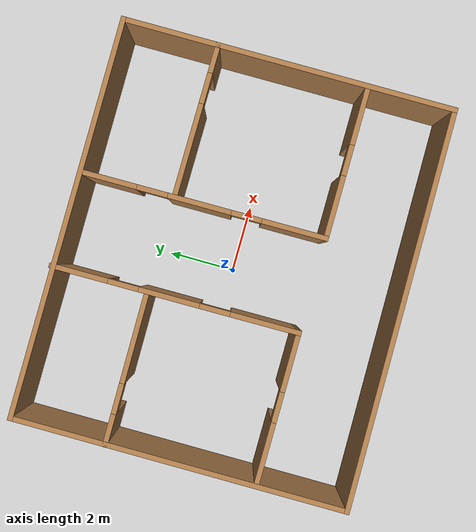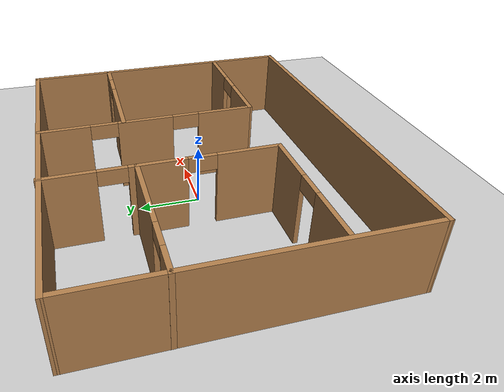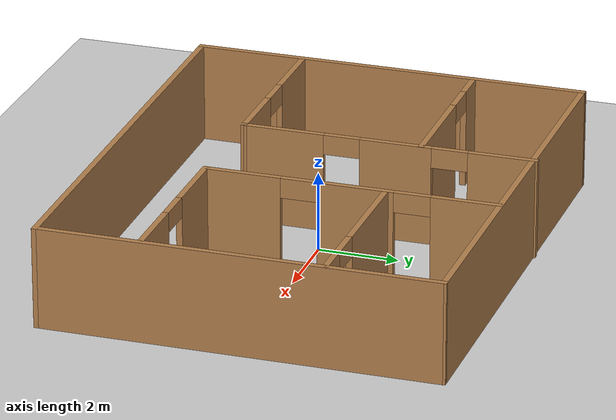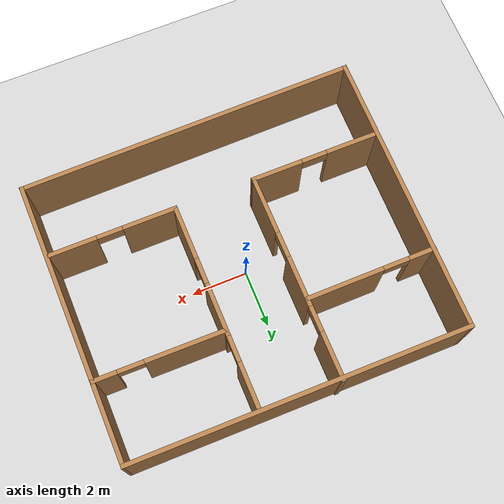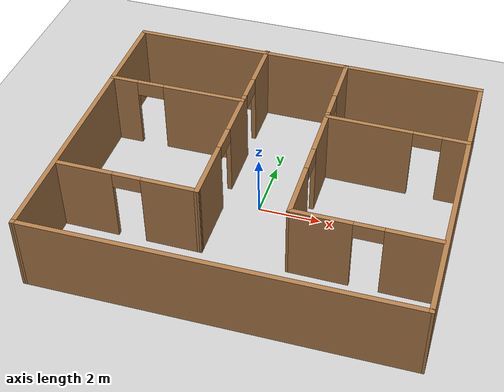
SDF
<sdf version="1.7">
 <world name="default">
  <light name="sun" type="directional">
   <pose>0 0 10 0 -0 0</pose>
   <diffuse>0.8 0.8 0.8 1</diffuse>
   <specular>0.2 0.2 0.2 1</specular>
   <attenuation>
    <range>1000</range>
    <constant>0.9</constant>
    <linear>0.01</linear>
    <quadratic>0.001</quadratic>
   </attenuation>
   <direction>-0.5 0.1 -0.9</direction>
   <spot><inner_angle>0</inner_angle><outer_angle>0</outer_angle><falloff>0</falloff></spot>
  </light>
  <model name="ground_plane">
   <static>1</static>
   <link name="link">
    <collision name="collision">
     <geometry><plane><normal>0 0 1</normal><size>100 100</size></plane></geometry>
     <surface><friction><ode><mu>100</mu><mu2>50</mu2></ode></friction></surface>
    </collision>
    <visual name="visual">
     <cast_shadows>0</cast_shadows>
     <geometry><plane><normal>0 0 1</normal><size>100 100</size></plane></geometry>
     <material>
      <script><uri>file://media/materials/scripts/gazebo.material</uri><name>Gazebo/Grey</name></script>
     </material>
    </visual>
   </link>
  </model>
  <gravity>0 0 -9.8</gravity>
  <magnetic_field>6e-06 2.3e-05 -4.2e-05</magnetic_field>
  <atmosphere type="adiabatic"/>
  <physics type="ode">
   <max_step_size>0.001</max_step_size>
   <real_time_factor>1</real_time_factor>
   <real_time_update_rate>1000</real_time_update_rate>
  </physics>
  <scene><ambient>0.4 0.4 0.4 1</ambient><background>0.7 0.7 0.7 1</background><shadows>1</shadows></scene>
  <audio><device>default</device></audio>
  <spherical_coordinates>
   <surface_model>EARTH_WGS84</surface_model>
   <latitude_deg>0</latitude_deg>
   <longitude_deg>0</longitude_deg>
   <elevation>0</elevation>
   <heading_deg>0</heading_deg>
  </spherical_coordinates>
  <model name="correct_world">
   <pose>0.189643 0.017379 0 0 -0 0</pose>
   <link name="Wall_0">
    <collision name="Wall_0_Collision">
     <geometry><box><size>11.8683 0.15 2.5</size></box></geometry>
     <pose>0 0 1.25 0 -0 0</pose>
    </collision>
    <visual name="Wall_0_Visual">
     <pose>0 0 1.25 0 -0 0</pose>
     <geometry><box><size>11.8683 0.15 2.5</size></box></geometry>
     <material>
      <script><uri>file://media/materials/scripts/gazebo.material</uri><name>Gazebo/Wood</name></script>
      <ambient>1 1 1 1</ambient>
     </material>
     <meta><layer>0</layer></meta>
    </visual>
    <pose>-0.026556 4.90604 0 0 -0 -0.002985</pose>
   </link>
   <link name="Wall_1">
    <collision name="Wall_1_Collision">
     <geometry><box><size>9.87473 0.15 2.5</size></box></geometry>
     <pose>0 0 1.25 0 -0 0</pose>
    </collision>
    <visual name="Wall_1_Visual">
     <pose>0 0 1.25 0 -0 0</pose>
     <geometry><box><size>9.87473 0.15 2.5</size></box></geometry>
     <material>
      <script><uri>file://media/materials/scripts/gazebo.material</uri><name>Gazebo/Wood</name></script>
      <ambient>1 1 1 1</ambient>
     </material>
     <meta><layer>0</layer></meta>
    </visual>
    <pose>5.85885 0.026317 0 0 -0 -1.5654</pose>
   </link>
   <link name="Wall_10">
    <pose>1.38139 1.2856 0 0 -0 -1.56348</pose>
    <visual name="Wall_10_Visual_0">
     <pose>-2.80766 0 1.25 0 -0 0</pose>
     <geometry><box><size>1.70581 0.15 2.5</size></box></geometry>
     <material>
      <script><uri>file://media/materials/scripts/gazebo.material</uri><name>Gazebo/Wood</name></script>
      <ambient>1 1 1 1</ambient>
     </material>
     <meta><layer>0</layer></meta>
    </visual>
    <collision name="Wall_10_Collision_0">
     <geometry><box><size>1.70581 0.15 2.5</size></box></geometry>
     <pose>-2.80766 0 1.25 0 -0 0</pose>
    </collision>
    <visual name="Wall_10_Visual_1">
     <pose>-0.121967 0 1.25 0 -0 0</pose>
     <geometry><box><size>1.86557 0.15 2.5</size></box></geometry>
     <material>
      <script><uri>file://media/materials/scripts/gazebo.material</uri><name>Gazebo/Wood</name></script>
      <ambient>1 1 1 1</ambient>
     </material>
     <meta><layer>0</layer></meta>
    </visual>
    <collision name="Wall_10_Collision_1">
     <geometry><box><size>1.86557 0.15 2.5</size></box></geometry>
     <pose>-0.121967 0 1.25 0 -0 0</pose>
    </collision>
    <visual name="Wall_10_Visual_2">
     <pose>2.68569 0 1.25 0 -0 0</pose>
     <geometry><box><size>1.94974 0.15 2.5</size></box></geometry>
     <material>
      <script><uri>file://media/materials/scripts/gazebo.material</uri><name>Gazebo/Wood</name></script>
      <ambient>1 1 1 1</ambient>
     </material>
     <meta><layer>0</layer></meta>
    </visual>
    <collision name="Wall_10_Collision_2">
     <geometry><box><size>1.94974 0.15 2.5</size></box></geometry>
     <pose>2.68569 0 1.25 0 -0 0</pose>
    </collision>
    <visual name="Wall_10_Visual_3">
     <pose>-1.50475 0 2.25 0 -0 0</pose>
     <geometry><box><size>0.9 0.15 0.5</size></box></geometry>
     <material>
      <script><uri>file://media/materials/scripts/gazebo.material</uri><name>Gazebo/Wood</name></script>
      <ambient>1 1 1 1</ambient>
     </material>
     <meta><layer>0</layer></meta>
    </visual>
    <collision name="Wall_10_Collision_3">
     <geometry><box><size>0.9 0.15 0.5</size></box></geometry>
     <pose>-1.50475 0 2.25 0 -0 0</pose>
    </collision>
    <visual name="Wall_10_Visual_4">
     <pose>1.26082 0 2.25 0 -0 0</pose>
     <geometry><box><size>0.9 0.15 0.5</size></box></geometry>
     <material>
      <script><uri>file://media/materials/scripts/gazebo.material</uri><name>Gazebo/Wood</name></script>
      <ambient>1 1 1 1</ambient>
     </material>
     <meta><layer>0</layer></meta>
    </visual>
    <collision name="Wall_10_Collision_4">
     <geometry><box><size>0.9 0.15 0.5</size></box></geometry>
     <pose>1.26082 0 2.25 0 -0 0</pose>
    </collision>
   </link>
   <link name="Wall_11">
    <pose>3.58263 -2.29986 0 0 -0 0</pose>
    <visual name="Wall_11_Visual_0">
     <pose>-1.29084 0 1.25 0 -0 0</pose>
     <geometry><box><size>1.91832 0.15 2.5</size></box></geometry>
     <material>
      <script><uri>file://media/materials/scripts/gazebo.material</uri><name>Gazebo/Wood</name></script>
      <ambient>1 1 1 1</ambient>
     </material>
     <meta><layer>0</layer></meta>
    </visual>
    <collision name="Wall_11_Collision_0">
     <geometry><box><size>1.91832 0.15 2.5</size></box></geometry>
     <pose>-1.29084 0 1.25 0 -0 0</pose>
    </collision>
    <visual name="Wall_11_Visual_1">
     <pose>1.40916 0 1.25 0 -0 0</pose>
     <geometry><box><size>1.68168 0.15 2.5</size></box></geometry>
     <material>
      <script><uri>file://media/materials/scripts/gazebo.material</uri><name>Gazebo/Wood</name></script>
      <ambient>1 1 1 1</ambient>
     </material>
     <meta><layer>0</layer></meta>
    </visual>
    <collision name="Wall_11_Collision_1">
     <geometry><box><size>1.68168 0.15 2.5</size></box></geometry>
     <pose>1.40916 0 1.25 0 -0 0</pose>
    </collision>
    <visual name="Wall_11_Visual_2">
     <pose>0.118323 0 2.25 0 -0 0</pose>
     <geometry><box><size>0.9 0.15 0.5</size></box></geometry>
     <material>
      <script><uri>file://media/materials/scripts/gazebo.material</uri><name>Gazebo/Wood</name></script>
      <ambient>1 1 1 1</ambient>
     </material>
     <meta><layer>0</layer></meta>
    </visual>
    <collision name="Wall_11_Collision_2">
     <geometry><box><size>0.9 0.15 0.5</size></box></geometry>
     <pose>0.118323 0 2.25 0 -0 0</pose>
    </collision>
   </link>
   <link name="Wall_13">
    <pose>3.62012 2.12512 0 0 -0 -0.007905</pose>
    <visual name="Wall_13_Visual_0">
     <pose>-0.888952 0 1.25 0 -0 0</pose>
     <geometry><box><size>2.79722 0.15 2.5</size></box></geometry>
     <material>
      <script><uri>file://media/materials/scripts/gazebo.material</uri><name>Gazebo/Wood</name></script>
      <ambient>1 1 1 1</ambient>
     </material>
     <meta><layer>0</layer></meta>
    </visual>
    <collision name="Wall_13_Collision_0">
     <geometry><box><size>2.79722 0.15 2.5</size></box></geometry>
     <pose>-0.888952 0 1.25 0 -0 0</pose>
    </collision>
    <visual name="Wall_13_Visual_1">
     <pose>1.84861 0 1.25 0 -0 0</pose>
     <geometry><box><size>0.877903 0.15 2.5</size></box></geometry>
     <material>
      <script><uri>file://media/materials/scripts/gazebo.material</uri><name>Gazebo/Wood</name></script>
      <ambient>1 1 1 1</ambient>
     </material>
     <meta><layer>0</layer></meta>
    </visual>
    <collision name="Wall_13_Collision_1">
     <geometry><box><size>0.877903 0.15 2.5</size></box></geometry>
     <pose>1.84861 0 1.25 0 -0 0</pose>
    </collision>
    <visual name="Wall_13_Visual_2">
     <pose>0.959659 0 2.25 0 -0 0</pose>
     <geometry><box><size>0.9 0.15 0.5</size></box></geometry>
     <material>
      <script><uri>file://media/materials/scripts/gazebo.material</uri><name>Gazebo/Wood</name></script>
      <ambient>1 1 1 1</ambient>
     </material>
     <meta><layer>0</layer></meta>
    </visual>
    <collision name="Wall_13_Collision_2">
     <geometry><box><size>0.9 0.15 0.5</size></box></geometry>
     <pose>0.959659 0 2.25 0 -0 0</pose>
    </collision>
   </link>
   <link name="Wall_2">
    <collision name="Wall_2_Collision">
     <geometry><box><size>11.9044 0.15 2.5</size></box></geometry>
     <pose>0 0 1.25 0 -0 0</pose>
    </collision>
    <visual name="Wall_2_Visual">
     <pose>0 0 1.25 0 -0 0</pose>
     <geometry><box><size>11.9044 0.15 2.5</size></box></geometry>
     <material>
      <script><uri>file://media/materials/scripts/gazebo.material</uri><name>Gazebo/Wood</name></script>
      <ambient>1 1 1 1</ambient>
     </material>
     <meta><layer>0</layer></meta>
    </visual>
    <pose>0.008424 -4.89714 0 0 -0 -3.13118</pose>
   </link>
   <link name="Wall_3">
    <collision name="Wall_3_Collision">
     <geometry><box><size>10.0319 0.15 2.5</size></box></geometry>
     <pose>0 0 1.25 0 -0 0</pose>
    </collision>
    <visual name="Wall_3_Visual">
     <pose>0 0 1.25 0 -0 0</pose>
     <geometry><box><size>10.0319 0.15 2.5</size></box></geometry>
     <material>
      <script><uri>file://media/materials/scripts/gazebo.material</uri><name>Gazebo/Wood</name></script>
      <ambient>1 1 1 1</ambient>
     </material>
     <meta><layer>0</layer></meta>
    </visual>
    <pose>-5.87698 -0.017408 0 0 -0 1.57257</pose>
   </link>
   <link name="Wall_5">
    <pose>-1.39953 1.33807 0 0 -0 -1.56355</pose>
    <visual name="Wall_5_Visual_0">
     <pose>-2.83908 0 1.25 0 -0 0</pose>
     <geometry><box><size>1.71306 0.15 2.5</size></box></geometry>
     <material>
      <script><uri>file://media/materials/scripts/gazebo.material</uri><name>Gazebo/Wood</name></script>
      <ambient>1 1 1 1</ambient>
     </material>
     <meta><layer>0</layer></meta>
    </visual>
    <collision name="Wall_5_Collision_0">
     <geometry><box><size>1.71306 0.15 2.5</size></box></geometry>
     <pose>-2.83908 0 1.25 0 -0 0</pose>
    </collision>
    <visual name="Wall_5_Visual_1">
     <pose>-0.188988 0 1.25 0 -0 0</pose>
     <geometry><box><size>1.78713 0.15 2.5</size></box></geometry>
     <material>
      <script><uri>file://media/materials/scripts/gazebo.material</uri><name>Gazebo/Wood</name></script>
      <ambient>1 1 1 1</ambient>
     </material>
     <meta><layer>0</layer></meta>
    </visual>
    <collision name="Wall_5_Collision_1">
     <geometry><box><size>1.78713 0.15 2.5</size></box></geometry>
     <pose>-0.188988 0 1.25 0 -0 0</pose>
    </collision>
    <visual name="Wall_5_Visual_2">
     <pose>2.65009 0 1.25 0 -0 0</pose>
     <geometry><box><size>2.09104 0.15 2.5</size></box></geometry>
     <material>
      <script><uri>file://media/materials/scripts/gazebo.material</uri><name>Gazebo/Wood</name></script>
      <ambient>1 1 1 1</ambient>
     </material>
     <meta><layer>0</layer></meta>
    </visual>
    <collision name="Wall_5_Collision_2">
     <geometry><box><size>2.09104 0.15 2.5</size></box></geometry>
     <pose>2.65009 0 1.25 0 -0 0</pose>
    </collision>
    <visual name="Wall_5_Visual_3">
     <pose>-1.53255 0 2.25 0 -0 0</pose>
     <geometry><box><size>0.9 0.15 0.5</size></box></geometry>
     <material>
      <script><uri>file://media/materials/scripts/gazebo.material</uri><name>Gazebo/Wood</name></script>
      <ambient>1 1 1 1</ambient>
     </material>
     <meta><layer>0</layer></meta>
    </visual>
    <collision name="Wall_5_Collision_3">
     <geometry><box><size>0.9 0.15 0.5</size></box></geometry>
     <pose>-1.53255 0 2.25 0 -0 0</pose>
    </collision>
    <visual name="Wall_5_Visual_4">
     <pose>1.15458 0 2.25 0 -0 0</pose>
     <geometry><box><size>0.9 0.15 0.5</size></box></geometry>
     <material>
      <script><uri>file://media/materials/scripts/gazebo.material</uri><name>Gazebo/Wood</name></script>
      <ambient>1 1 1 1</ambient>
     </material>
     <meta><layer>0</layer></meta>
    </visual>
    <collision name="Wall_5_Collision_4">
     <geometry><box><size>0.9 0.15 0.5</size></box></geometry>
     <pose>1.15458 0 2.25 0 -0 0</pose>
    </collision>
   </link>
   <link name="Wall_6">
    <pose>-3.54829 -2.28237 0 0 -0 3.14159</pose>
    <visual name="Wall_6_Visual_0">
     <pose>-1.34369 0 1.25 0 -0 0</pose>
     <geometry><box><size>1.81261 0.15 2.5</size></box></geometry>
     <material>
      <script><uri>file://media/materials/scripts/gazebo.material</uri><name>Gazebo/Wood</name></script>
      <ambient>1 1 1 1</ambient>
     </material>
     <meta><layer>0</layer></meta>
    </visual>
    <collision name="Wall_6_Collision_0">
     <geometry><box><size>1.81261 0.15 2.5</size></box></geometry>
     <pose>-1.34369 0 1.25 0 -0 0</pose>
    </collision>
    <visual name="Wall_6_Visual_1">
     <pose>1.35631 0 1.25 0 -0 0</pose>
     <geometry><box><size>1.78739 0.15 2.5</size></box></geometry>
     <material>
      <script><uri>file://media/materials/scripts/gazebo.material</uri><name>Gazebo/Wood</name></script>
      <ambient>1 1 1 1</ambient>
     </material>
     <meta><layer>0</layer></meta>
    </visual>
    <collision name="Wall_6_Collision_1">
     <geometry><box><size>1.78739 0.15 2.5</size></box></geometry>
     <pose>1.35631 0 1.25 0 -0 0</pose>
    </collision>
    <visual name="Wall_6_Visual_2">
     <pose>0.012612 0 2.25 0 -0 0</pose>
     <geometry><box><size>0.9 0.15 0.5</size></box></geometry>
     <material>
      <script><uri>file://media/materials/scripts/gazebo.material</uri><name>Gazebo/Wood</name></script>
      <ambient>1 1 1 1</ambient>
     </material>
     <meta><layer>0</layer></meta>
    </visual>
    <collision name="Wall_6_Collision_2">
     <geometry><box><size>0.9 0.15 0.5</size></box></geometry>
     <pose>0.012612 0 2.25 0 -0 0</pose>
    </collision>
   </link>
   <link name="Wall_8">
    <pose>-3.65574 2.15136 0 0 -0 -3.13767</pose>
    <visual name="Wall_8_Visual_0">
     <pose>-0.932899 0 1.25 0 -0 0</pose>
     <geometry><box><size>2.74431 0.15 2.5</size></box></geometry>
     <material>
      <script><uri>file://media/materials/scripts/gazebo.material</uri><name>Gazebo/Wood</name></script>
      <ambient>1 1 1 1</ambient>
     </material>
     <meta><layer>0</layer></meta>
    </visual>
    <collision name="Wall_8_Collision_0">
     <geometry><box><size>2.74431 0.15 2.5</size></box></geometry>
     <pose>-0.932899 0 1.25 0 -0 0</pose>
    </collision>
    <visual name="Wall_8_Visual_1">
     <pose>1.82215 0 1.25 0 -0 0</pose>
     <geometry><box><size>0.965798 0.15 2.5</size></box></geometry>
     <material>
      <script><uri>file://media/materials/scripts/gazebo.material</uri><name>Gazebo/Wood</name></script>
      <ambient>1 1 1 1</ambient>
     </material>
     <meta><layer>0</layer></meta>
    </visual>
    <collision name="Wall_8_Collision_1">
     <geometry><box><size>0.965798 0.15 2.5</size></box></geometry>
     <pose>1.82215 0 1.25 0 -0 0</pose>
    </collision>
    <visual name="Wall_8_Visual_2">
     <pose>0.889254 0 2.25 0 -0 0</pose>
     <geometry><box><size>0.9 0.15 0.5</size></box></geometry>
     <material>
      <script><uri>file://media/materials/scripts/gazebo.material</uri><name>Gazebo/Wood</name></script>
      <ambient>1 1 1 1</ambient>
     </material>
     <meta><layer>0</layer></meta>
    </visual>
    <collision name="Wall_8_Collision_2">
     <geometry><box><size>0.9 0.15 0.5</size></box></geometry>
     <pose>0.889254 0 2.25 0 -0 0</pose>
    </collision>
   </link>
   <static>1</static>
  </model>
 </world>
</sdf>
